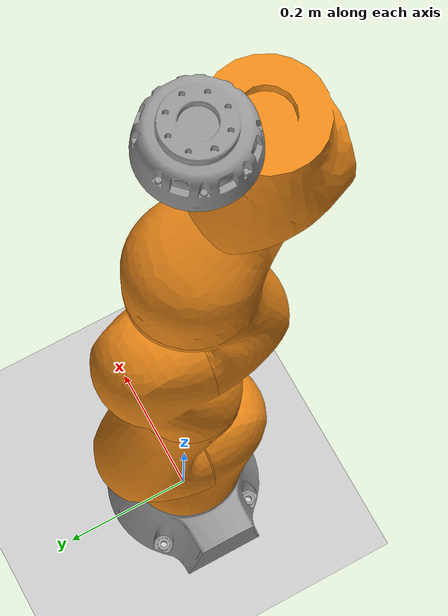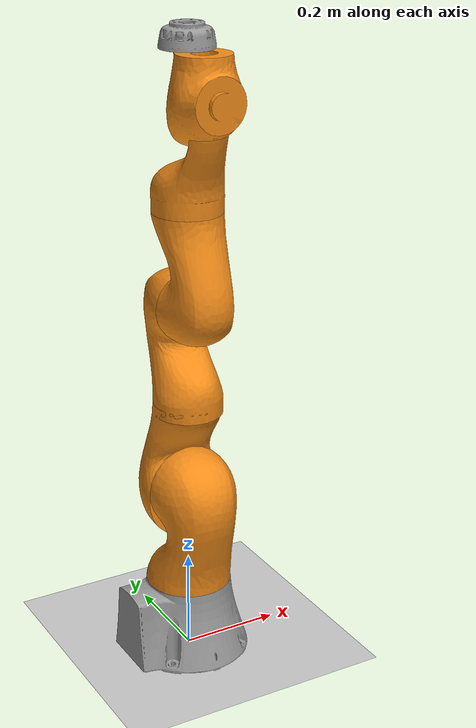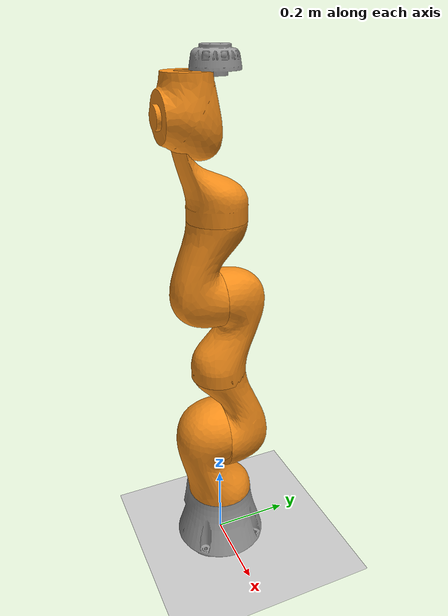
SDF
<sdf version="1.6">
 <world name="default">
  <model name="ground_plane">
   <static>1</static>
   <link name="link">
    <collision name="collision">
     <geometry><plane><normal>0 0 1</normal><size>100 100</size></plane></geometry>
     <surface><friction><ode><mu>100</mu><mu2>50</mu2></ode></friction></surface>
    </collision>
    <visual name="visual">
     <cast_shadows>0</cast_shadows>
     <geometry><plane><normal>0 0 1</normal><size>100 100</size></plane></geometry>
     <material>
      <script><uri>file://media/materials/scripts/gazebo.material</uri><name>Gazebo/Grey</name></script>
     </material>
    </visual>
   </link>
  </model>
  <light name="sun" type="directional">
   <pose>0 0 10 0 -0 0</pose>
   <diffuse>0.8 0.8 0.8 1</diffuse>
   <specular>0.2 0.2 0.2 1</specular>
   <attenuation>
    <range>1000</range>
    <constant>0.9</constant>
    <linear>0.01</linear>
    <quadratic>0.001</quadratic>
   </attenuation>
   <direction>-0.5 0.1 -0.9</direction>
  </light>
  <physics name="default_physics" default="0" type="ode">
   <max_step_size>0.01</max_step_size>
   <real_time_factor>1</real_time_factor>
   <real_time_update_rate>100</real_time_update_rate>
   <ode>
    <solver>
     <type>quick</type>
     <iters>50</iters>
     <sor>1</sor>
     <use_dynamic_moi_rescaling>0</use_dynamic_moi_rescaling>
    </solver>
    <constraints>
     <cfm>0</cfm>
     <erp>0.2</erp>
     <contact_max_correcting_vel>100</contact_max_correcting_vel>
     <contact_surface_layer>0.001</contact_surface_layer>
    </constraints>
   </ode>
  </physics>
  <gravity>0 0 -9.8</gravity>
  <magnetic_field>6e-06 2.3e-05 -4.2e-05</magnetic_field>
  <atmosphere type="adiabatic"/>
  <scene><ambient>0.4 0.4 0.4 1</ambient><background>0.7 0.7 0.7 1</background><shadows>1</shadows></scene>
  <spherical_coordinates>
   <surface_model>EARTH_WGS84</surface_model>
   <latitude_deg>0</latitude_deg>
   <longitude_deg>0</longitude_deg>
   <elevation>0</elevation>
   <heading_deg>0</heading_deg>
  </spherical_coordinates>
  <model name="iiwa">
   <link name="iiwa_link_0">
    <inertial>
     <pose>-0.1 0 0.07 0 -0 0</pose>
     <mass>5</mass>
     <inertia><ixx>0.05</ixx><ixy>0</ixy><ixz>0</ixz><iyy>0.06</iyy><iyz>0</iyz><izz>0.03</izz></inertia>
    </inertial>
    <collision name="iiwa_link_0_collision">
     <geometry>
      <mesh>
       <scale>1 1 1</scale>
       <uri>/home/yudha/catkin_ws/src/rob_hardware/iiwa_stack/iiwa_description/meshes/iiwa7/collision/link_0.stl</uri>
      </mesh>
     </geometry>
     <surface><friction><ode><mu>0.2</mu><mu2>0.2</mu2></ode></friction></surface>
    </collision>
    <visual name="iiwa_link_0_visual">
     <geometry>
      <mesh>
       <scale>1 1 1</scale>
       <uri>/home/yudha/catkin_ws/src/rob_hardware/iiwa_stack/iiwa_description/meshes/iiwa7/visual/link_0.stl</uri>
      </mesh>
     </geometry>
     <material>
      <script><name>Gazebo/Grey</name><uri>file://media/materials/scripts/gazebo.material</uri></script>
     </material>
    </visual>
   </link>
   <joint name="world_iiwa_joint" type="fixed"><child>iiwa_link_0</child><parent>world</parent></joint>
   <link name="iiwa_link_1">
    <pose>0 0 0.15 0 -0 0</pose>
    <inertial>
     <pose>0 -0.03 0.12 0 -0 0</pose>
     <mass>3.4525</mass>
     <inertia>
      <ixx>0.02183</ixx>
      <ixy>0</ixy>
      <ixz>0</ixz>
      <iyy>0.007703</iyy>
      <iyz>-0.003887</iyz>
      <izz>0.02083</izz>
     </inertia>
    </inertial>
    <collision name="iiwa_link_1_collision">
     <pose>0 0 0.0075 0 -0 0</pose>
     <geometry>
      <mesh>
       <scale>1 1 1</scale>
       <uri>/home/yudha/catkin_ws/src/rob_hardware/iiwa_stack/iiwa_description/meshes/iiwa7/collision/link_1.stl</uri>
      </mesh>
     </geometry>
     <surface><friction><ode><mu>0.2</mu><mu2>0.2</mu2></ode></friction></surface>
    </collision>
    <visual name="iiwa_link_1_visual">
     <pose>0 0 0.0075 0 -0 0</pose>
     <geometry>
      <mesh>
       <scale>1 1 1</scale>
       <uri>/home/yudha/catkin_ws/src/rob_hardware/iiwa_stack/iiwa_description/meshes/iiwa7/visual/link_1.stl</uri>
      </mesh>
     </geometry>
     <material>
      <script><name>Gazebo/Orange</name><uri>file://media/materials/scripts/gazebo.material</uri></script>
     </material>
    </visual>
   </link>
   <joint name="iiwa_joint_1" type="revolute">
    <child>iiwa_link_1</child>
    <parent>iiwa_link_0</parent>
    <axis>
     <xyz>0 0 1</xyz>
     <limit><lower>-2.96706</lower><upper>2.96706</upper><effort>300</effort><velocity>10</velocity></limit>
     <dynamics>
      <damping>0.5</damping>
      <friction>0</friction>
      <spring_reference>0</spring_reference>
      <spring_stiffness>0</spring_stiffness>
     </dynamics>
     <use_parent_model_frame>1</use_parent_model_frame>
    </axis>
   </joint>
   <link name="iiwa_link_2">
    <pose>0 0 0.34 1.5708 -0 -3.14159</pose>
    <inertial>
     <pose>0.0003 0.059 0.042 0 -0 0</pose>
     <mass>3.4821</mass>
     <inertia>
      <ixx>0.02076</ixx>
      <ixy>0</ixy>
      <ixz>-0.003626</ixz>
      <iyy>0.02179</iyy>
      <iyz>0</iyz>
      <izz>0.00779</izz>
     </inertia>
    </inertial>
    <collision name="iiwa_link_2_collision">
     <geometry>
      <mesh>
       <scale>1 1 1</scale>
       <uri>/home/yudha/catkin_ws/src/rob_hardware/iiwa_stack/iiwa_description/meshes/iiwa7/collision/link_2.stl</uri>
      </mesh>
     </geometry>
     <surface><friction><ode><mu>0.2</mu><mu2>0.2</mu2></ode></friction></surface>
    </collision>
    <visual name="iiwa_link_2_visual">
     <geometry>
      <mesh>
       <scale>1 1 1</scale>
       <uri>/home/yudha/catkin_ws/src/rob_hardware/iiwa_stack/iiwa_description/meshes/iiwa7/visual/link_2.stl</uri>
      </mesh>
     </geometry>
     <material>
      <script><name>Gazebo/Orange</name><uri>file://media/materials/scripts/gazebo.material</uri></script>
     </material>
    </visual>
   </link>
   <joint name="iiwa_joint_2" type="revolute">
    <child>iiwa_link_2</child>
    <parent>iiwa_link_1</parent>
    <axis>
     <xyz>-0 1 0</xyz>
     <limit><lower>-2.0944</lower><upper>2.0944</upper><effort>300</effort><velocity>10</velocity></limit>
     <dynamics>
      <damping>0.5</damping>
      <friction>0</friction>
      <spring_reference>0</spring_reference>
      <spring_stiffness>0</spring_stiffness>
     </dynamics>
     <use_parent_model_frame>1</use_parent_model_frame>
    </axis>
   </joint>
   <link name="iiwa_link_3">
    <pose>0 -0 0.55 0 -0 0</pose>
    <inertial>
     <pose>0 0.03 0.13 0 -0 0</pose>
     <mass>4.05623</mass>
     <inertia>
      <ixx>0.03204</ixx>
      <ixy>0</ixy>
      <ixz>0</ixz>
      <iyy>0.00972</iyy>
      <iyz>0.006227</iyz>
      <izz>0.03042</izz>
     </inertia>
    </inertial>
    <collision name="iiwa_link_3_collision">
     <pose>0 0 -0.026 0 -0 0</pose>
     <geometry>
      <mesh>
       <scale>1 1 1</scale>
       <uri>/home/yudha/catkin_ws/src/rob_hardware/iiwa_stack/iiwa_description/meshes/iiwa7/collision/link_3.stl</uri>
      </mesh>
     </geometry>
     <surface><friction><ode><mu>0.2</mu><mu2>0.2</mu2></ode></friction></surface>
    </collision>
    <visual name="iiwa_link_3_visual">
     <pose>0 0 -0.026 0 -0 0</pose>
     <geometry>
      <mesh>
       <scale>1 1 1</scale>
       <uri>/home/yudha/catkin_ws/src/rob_hardware/iiwa_stack/iiwa_description/meshes/iiwa7/visual/link_3.stl</uri>
      </mesh>
     </geometry>
     <material>
      <script><name>Gazebo/Orange</name><uri>file://media/materials/scripts/gazebo.material</uri></script>
     </material>
    </visual>
   </link>
   <joint name="iiwa_joint_3" type="revolute">
    <child>iiwa_link_3</child>
    <parent>iiwa_link_2</parent>
    <axis>
     <xyz>0 0 1</xyz>
     <limit><lower>-2.96706</lower><upper>2.96706</upper><effort>300</effort><velocity>10</velocity></limit>
     <dynamics>
      <damping>0.5</damping>
      <friction>0</friction>
      <spring_reference>0</spring_reference>
      <spring_stiffness>0</spring_stiffness>
     </dynamics>
     <use_parent_model_frame>1</use_parent_model_frame>
    </axis>
   </joint>
   <link name="iiwa_link_4">
    <pose>0 -0 0.74 1.5708 -0 0</pose>
    <inertial>
     <pose>0 0.067 0.034 0 -0 0</pose>
     <mass>3.4822</mass>
     <inertia>
      <ixx>0.02178</ixx>
      <ixy>0</ixy>
      <ixz>0</ixz>
      <iyy>0.02075</iyy>
      <iyz>-0.003625</iyz>
      <izz>0.007785</izz>
     </inertia>
    </inertial>
    <collision name="iiwa_link_4_collision">
     <geometry>
      <mesh>
       <scale>1 1 1</scale>
       <uri>/home/yudha/catkin_ws/src/rob_hardware/iiwa_stack/iiwa_description/meshes/iiwa7/collision/link_4.stl</uri>
      </mesh>
     </geometry>
     <surface><friction><ode><mu>0.2</mu><mu2>0.2</mu2></ode></friction></surface>
    </collision>
    <visual name="iiwa_link_4_visual">
     <geometry>
      <mesh>
       <scale>1 1 1</scale>
       <uri>/home/yudha/catkin_ws/src/rob_hardware/iiwa_stack/iiwa_description/meshes/iiwa7/visual/link_4.stl</uri>
      </mesh>
     </geometry>
     <material>
      <script><name>Gazebo/Orange</name><uri>file://media/materials/scripts/gazebo.material</uri></script>
     </material>
    </visual>
   </link>
   <joint name="iiwa_joint_4" type="revolute">
    <child>iiwa_link_4</child>
    <parent>iiwa_link_3</parent>
    <axis>
     <xyz>0 -1 0</xyz>
     <limit><lower>-2.0944</lower><upper>2.0944</upper><effort>300</effort><velocity>10</velocity></limit>
     <dynamics>
      <damping>0.5</damping>
      <friction>0</friction>
      <spring_reference>0</spring_reference>
      <spring_stiffness>0</spring_stiffness>
     </dynamics>
     <use_parent_model_frame>1</use_parent_model_frame>
    </axis>
   </joint>
   <link name="iiwa_link_5">
    <pose>0 0 0.95 0 -0 -3.14159</pose>
    <inertial>
     <pose>0.0001 0.021 0.076 0 -0 0</pose>
     <mass>2.1633</mass>
     <inertia>
      <ixx>0.01287</ixx>
      <ixy>0</ixy>
      <ixz>0</ixz>
      <iyy>0.005708</iyy>
      <iyz>-0.003946</iyz>
      <izz>0.01112</izz>
     </inertia>
    </inertial>
    <collision name="iiwa_link_5_collision">
     <pose>0 0 -0.026 0 -0 0</pose>
     <geometry>
      <mesh>
       <scale>1 1 1</scale>
       <uri>/home/yudha/catkin_ws/src/rob_hardware/iiwa_stack/iiwa_description/meshes/iiwa7/collision/link_5.stl</uri>
      </mesh>
     </geometry>
     <surface><friction><ode><mu>0.2</mu><mu2>0.2</mu2></ode></friction></surface>
    </collision>
    <visual name="iiwa_link_5_visual">
     <pose>0 0 -0.026 0 -0 0</pose>
     <geometry>
      <mesh>
       <scale>1 1 1</scale>
       <uri>/home/yudha/catkin_ws/src/rob_hardware/iiwa_stack/iiwa_description/meshes/iiwa7/visual/link_5.stl</uri>
      </mesh>
     </geometry>
     <material>
      <script><name>Gazebo/Orange</name><uri>file://media/materials/scripts/gazebo.material</uri></script>
     </material>
    </visual>
   </link>
   <joint name="iiwa_joint_5" type="revolute">
    <child>iiwa_link_5</child>
    <parent>iiwa_link_4</parent>
    <axis>
     <xyz>0 0 1</xyz>
     <limit><lower>-2.96706</lower><upper>2.96706</upper><effort>300</effort><velocity>10</velocity></limit>
     <dynamics>
      <damping>0.5</damping>
      <friction>0</friction>
      <spring_reference>0</spring_reference>
      <spring_stiffness>0</spring_stiffness>
     </dynamics>
     <use_parent_model_frame>1</use_parent_model_frame>
    </axis>
   </joint>
   <link name="iiwa_link_6">
    <pose>0 -0.0607 1.14 1.5708 -0 -3.14159</pose>
    <inertial>
     <pose>0 0.0006 0.0004 0 -0 0</pose>
     <mass>2.3466</mass>
     <inertia>
      <ixx>0.006509</ixx>
      <ixy>0</ixy>
      <ixz>0</ixz>
      <iyy>0.006259</iyy>
      <iyz>0.00031891</iyz>
      <izz>0.004527</izz>
     </inertia>
    </inertial>
    <collision name="iiwa_link_6_collision">
     <geometry>
      <mesh>
       <scale>1 1 1</scale>
       <uri>/home/yudha/catkin_ws/src/rob_hardware/iiwa_stack/iiwa_description/meshes/iiwa7/collision/link_6.stl</uri>
      </mesh>
     </geometry>
     <surface><friction><ode><mu>0.2</mu><mu2>0.2</mu2></ode></friction></surface>
    </collision>
    <visual name="iiwa_link_6_visual">
     <geometry>
      <mesh>
       <scale>1 1 1</scale>
       <uri>/home/yudha/catkin_ws/src/rob_hardware/iiwa_stack/iiwa_description/meshes/iiwa7/visual/link_6.stl</uri>
      </mesh>
     </geometry>
     <material>
      <script><name>Gazebo/Orange</name><uri>file://media/materials/scripts/gazebo.material</uri></script>
     </material>
    </visual>
   </link>
   <joint name="iiwa_joint_6" type="revolute">
    <child>iiwa_link_6</child>
    <parent>iiwa_link_5</parent>
    <axis>
     <xyz>-0 1 -0</xyz>
     <limit><lower>-2.0944</lower><upper>2.0944</upper><effort>300</effort><velocity>10</velocity></limit>
     <dynamics>
      <damping>0.5</damping>
      <friction>0</friction>
      <spring_reference>0</spring_reference>
      <spring_stiffness>0</spring_stiffness>
     </dynamics>
     <use_parent_model_frame>1</use_parent_model_frame>
    </axis>
   </joint>
   <link name="iiwa_link_7">
    <pose>0 0 1.221 0 -0 0</pose>
    <inertial>
     <pose>0 0 0.02 0 -0 0</pose>
     <mass>3.129</mass>
     <inertia>
      <ixx>0.01464</ixx>
      <ixy>0.0005912</ixy>
      <ixz>0</ixz>
      <iyy>0.01465</iyy>
      <iyz>0</iyz>
      <izz>0.002872</izz>
     </inertia>
    </inertial>
    <collision name="iiwa_link_7_collision">
     <pose>0 0 -0.0005 0 -0 0</pose>
     <geometry>
      <mesh>
       <scale>1 1 1</scale>
       <uri>/home/yudha/catkin_ws/src/rob_hardware/iiwa_stack/iiwa_description/meshes/iiwa7/collision/link_7.stl</uri>
      </mesh>
     </geometry>
     <surface><friction><ode><mu>0.2</mu><mu2>0.2</mu2></ode></friction></surface>
    </collision>
    <visual name="iiwa_link_7_visual">
     <pose>0 0 -0.0005 0 -0 0</pose>
     <geometry>
      <mesh>
       <scale>1 1 1</scale>
       <uri>/home/yudha/catkin_ws/src/rob_hardware/iiwa_stack/iiwa_description/meshes/iiwa7/visual/link_7.stl</uri>
      </mesh>
     </geometry>
     <material>
      <script><name>Gazebo/Grey</name><uri>file://media/materials/scripts/gazebo.material</uri></script>
     </material>
    </visual>
    <gravity>0</gravity>
   </link>
   <joint name="iiwa_joint_7" type="revolute">
    <child>iiwa_link_7</child>
    <parent>iiwa_link_6</parent>
    <axis>
     <xyz>0 0 1</xyz>
     <limit><lower>-3.05433</lower><upper>3.05433</upper><effort>300</effort><velocity>10</velocity></limit>
     <dynamics>
      <damping>0.5</damping>
      <friction>0</friction>
      <spring_reference>0</spring_reference>
      <spring_stiffness>0</spring_stiffness>
     </dynamics>
     <use_parent_model_frame>1</use_parent_model_frame>
    </axis>
    <physics>
     <provide_feedback>1</provide_feedback>
     <ode><provide_feedback>1</provide_feedback><limit><cfm>0</cfm><erp>0.2</erp></limit></ode>
    </physics>
   </joint>
   <plugin name="ft_sensor" filename="libgazebo_ros_ft_sensor.so">
    <updateRate>100.0</updateRate>
    <topicName>/iiwa/state/CartesianWrench</topicName>
    <jointName>iiwa_joint_7</jointName>
    <robotNamespace>/</robotNamespace>
   </plugin>
   <static>0</static>
   <plugin name="gazebo_ros_control" filename="libgazebo_ros_control.so">
    <robotNamespace>/iiwa</robotNamespace>
    <legacyModeNS>1</legacyModeNS>
   </plugin>
   <pose>0 0 0 -0 -2e-06 1e-06</pose>
  </model>
 </world>
</sdf>
